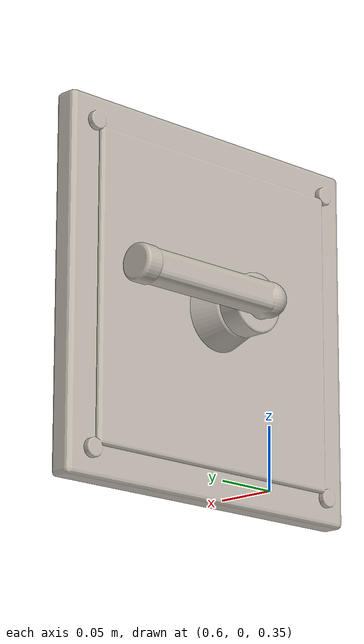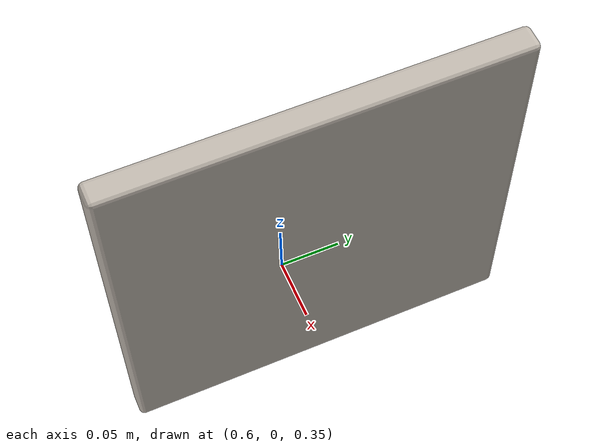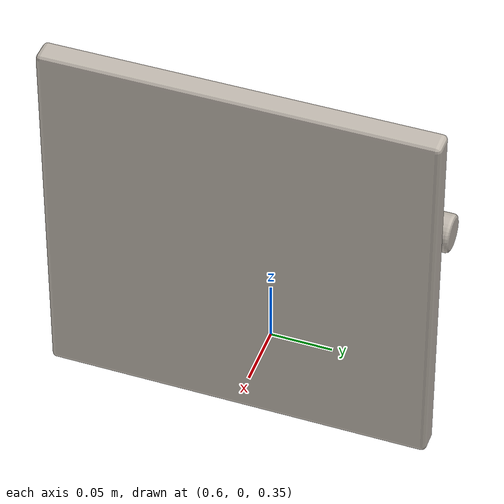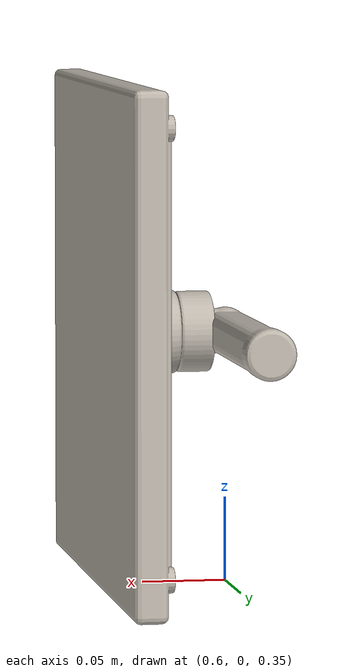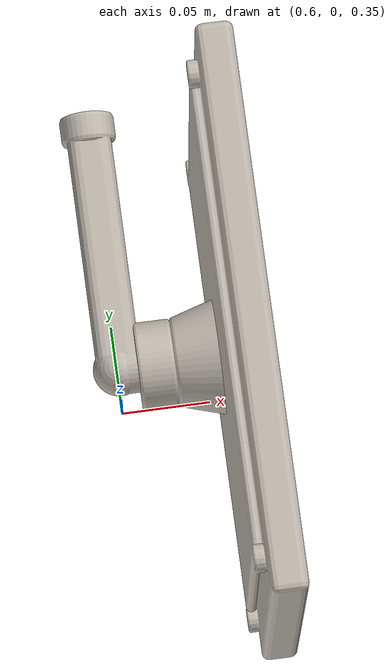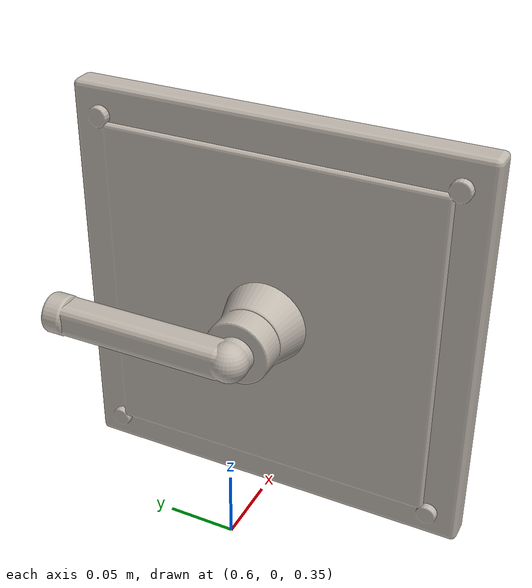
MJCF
<?xml version="1.0"?>
<mujoco model="lever">
  <compiler angle="radian" meshdir="assets" texturedir="assets"/>

  <asset>
    <texture name="lever_plate_tex" type="2d" file="lever_plate_tex.png"/>
    <material name="lever_plate_mat" texture="lever_plate_tex" specular="0.35" shininess="0.25"/>
    <mesh name="lever_plate_vis" file="lever_plate_vis.obj"/>
    <texture name="lever_handle_tex" type="2d" file="lever_handle_tex.png"/>
    <material name="lever_handle_mat" texture="lever_handle_tex" specular="0.5" shininess="0.45"/>
    <mesh name="lever_handle_vis" file="lever_handle_vis.obj"/>
  </asset>

  <worldbody>
    <body name="lever_base" pos="0.65 0 0.5" mocap="true">
      <!-- 300 x 300 x 20 mm brushed-steel back plate with four proud bolts. -->
      <geom name="vis_plate" type="mesh" mesh="lever_plate_vis" material="lever_plate_mat" contype="0" conaffinity="0" group="2" mass="0"/>
      <!-- Wall-plate collider (unchanged from the primitive asset). -->
      <geom type="box" name="lever_body" size="0.01 0.15 0.15" pos="0.02 0 0" group="3"
            condim="3" friction="1 0.03 0.003" rgba="0.5 0.5 0.5 0.3"
            contype="2" conaffinity="1" solref="0.01 1"/>
      <!-- Base site at the lever tip when joint = 0 (horizontal, pointing +y). -->
      <site name="base_site" pos="-0.05 0.12 0.0" size="0.004" rgba="0 0 1 0.3"/>
      <body name="handle">
        <!-- Hinge about the approach axis (+x) -> wrist rotation. -90 deg in radians. -->
        <joint name="lever_hinge" type="hinge" axis="1 0 0" pos="0 0 0"
               range="-1.5707963 0" limited="true" damping="0.05"/>
        <!-- Rose + L-shaped lever bar, one mesh (they move together). -->
        <geom name="vis_handle" type="mesh" mesh="lever_handle_vis" material="lever_handle_mat" contype="0" conaffinity="0" group="2" mass="0"/>
        <!-- Rose collider. -->
        <geom type="cylinder" name="lever_hub" size="0.015 0.01"
              pos="-0.02 0 0" quat="0.7071 0 0.7071 0" group="3"
              condim="3" friction="1 0.03 0.003" rgba="0.5 0.5 0.5 0.3"
              contype="2" conaffinity="1" solref="0.01 1"/>
        <!-- Lever bar collider: 24 x 140 x 24 mm out along +y from the hinge axis. -->
        <geom type="box" name="handle" pos="-0.05 0.07 0.0" size="0.012 0.07 0.012" group="3"
              condim="3" friction="1 0.03 0.003" rgba="0.5 0.5 0.5 0.3"
              contype="2" conaffinity="1" solref="0.01 1"/>
        <!-- Grasp/push point at the free end of the lever arm. -->
        <site name="object_site" pos="-0.05 0.12 0.0" size="0.004" rgba="1 0 0 1"/>
      </body>
    </body>
  </worldbody>
</mujoco>
